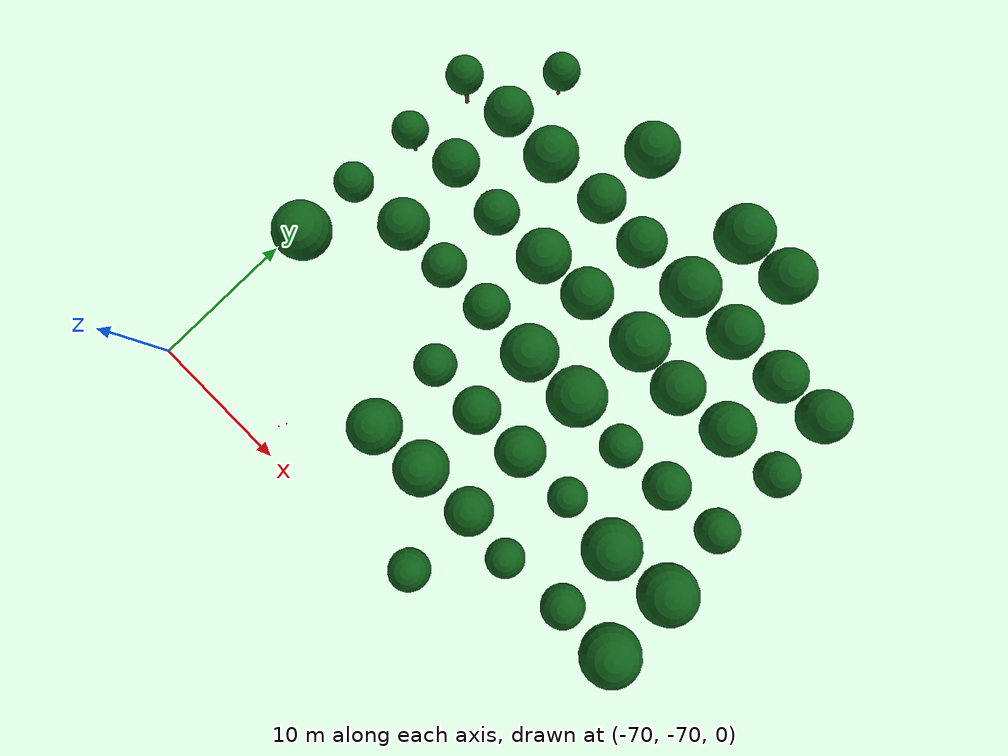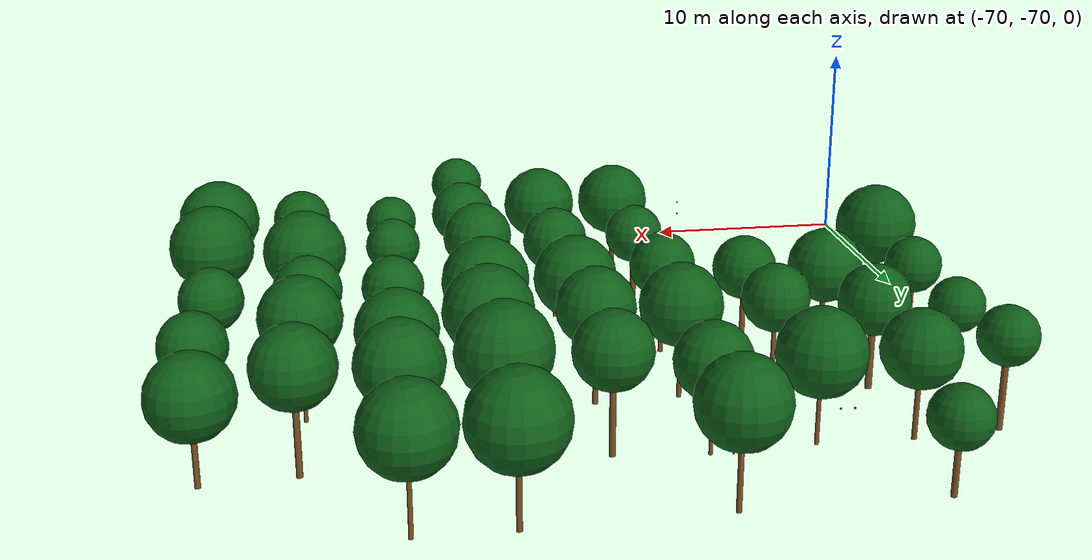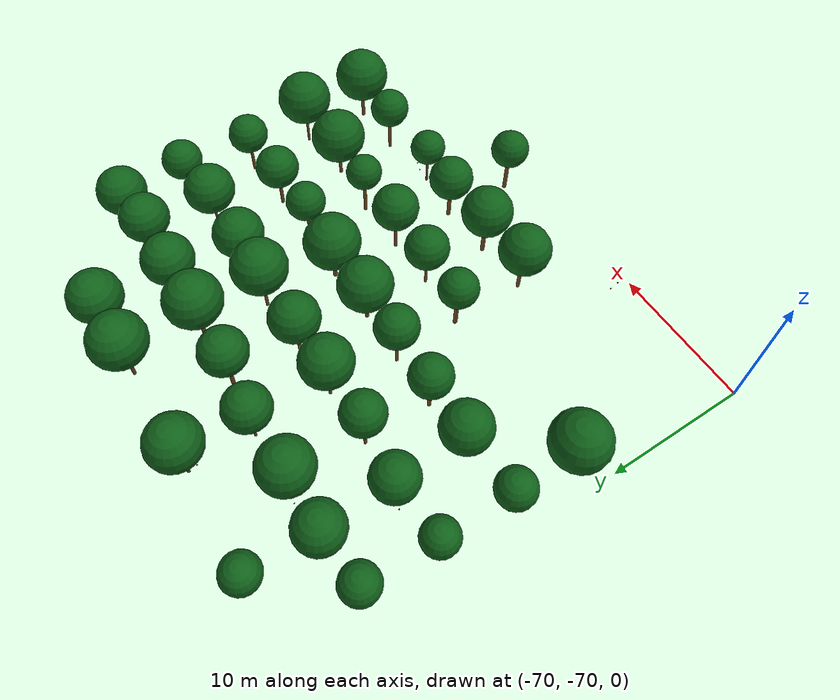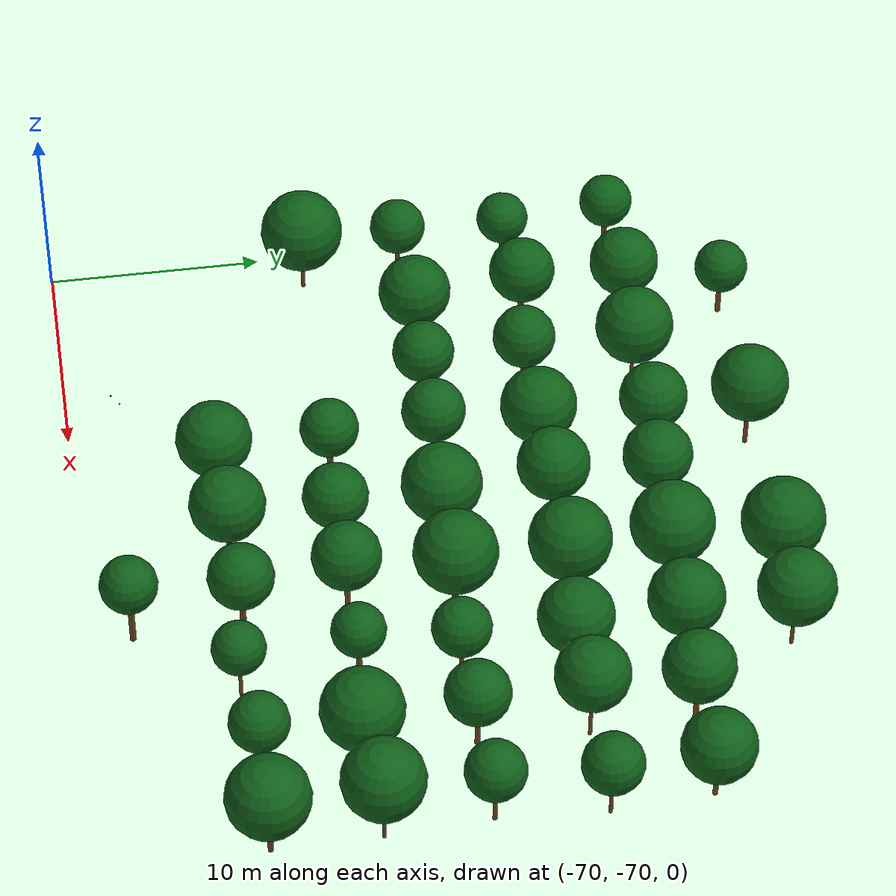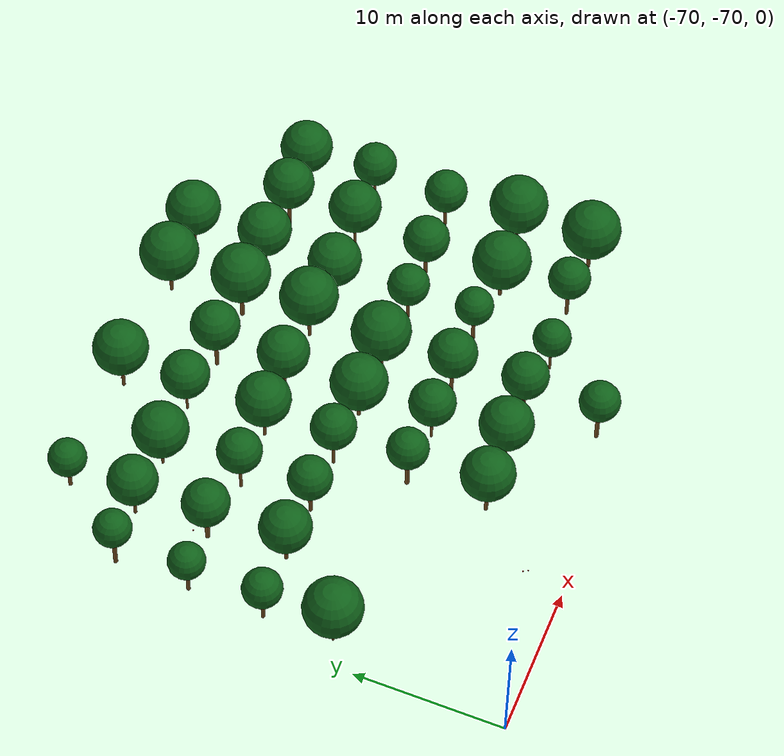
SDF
<sdf version="1.9">
 <world name="cheongsong_orchard">
  <model name="apple_tree_503">
   <static>true</static>
   <pose>-48.19 -67.98 0 0 0 0</pose>
   <link name="link">
    <collision name="trunk_col">
     <pose>0 0 1.38 0 0 0</pose>
     <geometry><cylinder><radius>0.141</radius><length>2.77</length></cylinder></geometry>
    </collision>
    <visual name="trunk_vis">
     <pose>0 0 1.38 0 0 0</pose>
     <geometry><cylinder><radius>0.141</radius><length>2.77</length></cylinder></geometry>
     <material><ambient>0.35 0.22 0.08 1</ambient><diffuse>0.45 0.30 0.12 1</diffuse></material>
    </visual>
    <collision name="canopy_col">
     <pose>0 0 4.11 0 0 0</pose>
     <geometry><sphere><radius>1.34</radius></sphere></geometry>
    </collision>
    <visual name="canopy_vis">
     <pose>0 0 4.11 0 0 0</pose>
     <geometry><sphere><radius>1.34</radius></sphere></geometry>
     <material><ambient>0.04 0.28 0.06 1</ambient><diffuse>0.06 0.38 0.10 1</diffuse></material>
    </visual>
   </link>
  </model>
  <model name="apple_tree_557">
   <static>true</static>
   <pose>-55.90 -63.38 0 0 0 0</pose>
   <link name="link">
    <collision name="trunk_col">
     <pose>0 0 1.24 0 0 0</pose>
     <geometry><cylinder><radius>0.125</radius><length>2.48</length></cylinder></geometry>
    </collision>
    <visual name="trunk_vis">
     <pose>0 0 1.24 0 0 0</pose>
     <geometry><cylinder><radius>0.125</radius><length>2.48</length></cylinder></geometry>
     <material><ambient>0.35 0.22 0.08 1</ambient><diffuse>0.45 0.30 0.12 1</diffuse></material>
    </visual>
    <collision name="canopy_col">
     <pose>0 0 4.25 0 0 0</pose>
     <geometry><sphere><radius>1.77</radius></sphere></geometry>
    </collision>
    <visual name="canopy_vis">
     <pose>0 0 4.25 0 0 0</pose>
     <geometry><sphere><radius>1.77</radius></sphere></geometry>
     <material><ambient>0.04 0.28 0.06 1</ambient><diffuse>0.06 0.38 0.10 1</diffuse></material>
    </visual>
   </link>
  </model>
  <model name="apple_tree_558">
   <static>true</static>
   <pose>-52.03 -63.15 0 0 0 0</pose>
   <link name="link">
    <collision name="trunk_col">
     <pose>0 0 1.26 0 0 0</pose>
     <geometry><cylinder><radius>0.146</radius><length>2.52</length></cylinder></geometry>
    </collision>
    <visual name="trunk_vis">
     <pose>0 0 1.26 0 0 0</pose>
     <geometry><cylinder><radius>0.146</radius><length>2.52</length></cylinder></geometry>
     <material><ambient>0.35 0.22 0.08 1</ambient><diffuse>0.45 0.30 0.12 1</diffuse></material>
    </visual>
    <collision name="canopy_col">
     <pose>0 0 4.29 0 0 0</pose>
     <geometry><sphere><radius>1.77</radius></sphere></geometry>
    </collision>
    <visual name="canopy_vis">
     <pose>0 0 4.29 0 0 0</pose>
     <geometry><sphere><radius>1.77</radius></sphere></geometry>
     <material><ambient>0.04 0.28 0.06 1</ambient><diffuse>0.06 0.38 0.10 1</diffuse></material>
    </visual>
   </link>
  </model>
  <model name="apple_tree_559">
   <static>true</static>
   <pose>-48.08 -62.95 0 0 0 0</pose>
   <link name="link">
    <collision name="trunk_col">
     <pose>0 0 1.24 0 0 0</pose>
     <geometry><cylinder><radius>0.141</radius><length>2.47</length></cylinder></geometry>
    </collision>
    <visual name="trunk_vis">
     <pose>0 0 1.24 0 0 0</pose>
     <geometry><cylinder><radius>0.141</radius><length>2.47</length></cylinder></geometry>
     <material><ambient>0.35 0.22 0.08 1</ambient><diffuse>0.45 0.30 0.12 1</diffuse></material>
    </visual>
    <collision name="canopy_col">
     <pose>0 0 4.01 0 0 0</pose>
     <geometry><sphere><radius>1.54</radius></sphere></geometry>
    </collision>
    <visual name="canopy_vis">
     <pose>0 0 4.01 0 0 0</pose>
     <geometry><sphere><radius>1.54</radius></sphere></geometry>
     <material><ambient>0.04 0.28 0.06 1</ambient><diffuse>0.06 0.38 0.10 1</diffuse></material>
    </visual>
   </link>
  </model>
  <model name="apple_tree_560">
   <static>true</static>
   <pose>-44.48 -63.43 0 0 0 0</pose>
   <link name="link">
    <collision name="trunk_col">
     <pose>0 0 1.16 0 0 0</pose>
     <geometry><cylinder><radius>0.084</radius><length>2.32</length></cylinder></geometry>
    </collision>
    <visual name="trunk_vis">
     <pose>0 0 1.16 0 0 0</pose>
     <geometry><cylinder><radius>0.084</radius><length>2.32</length></cylinder></geometry>
     <material><ambient>0.35 0.22 0.08 1</ambient><diffuse>0.45 0.30 0.12 1</diffuse></material>
    </visual>
    <collision name="canopy_col">
     <pose>0 0 3.57 0 0 0</pose>
     <geometry><sphere><radius>1.25</radius></sphere></geometry>
    </collision>
    <visual name="canopy_vis">
     <pose>0 0 3.57 0 0 0</pose>
     <geometry><sphere><radius>1.25</radius></sphere></geometry>
     <material><ambient>0.04 0.28 0.06 1</ambient><diffuse>0.06 0.38 0.10 1</diffuse></material>
    </visual>
   </link>
  </model>
  <model name="apple_tree_561">
   <static>true</static>
   <pose>-40.05 -62.97 0 0 0 0</pose>
   <link name="link">
    <collision name="trunk_col">
     <pose>0 0 1.34 0 0 0</pose>
     <geometry><cylinder><radius>0.119</radius><length>2.67</length></cylinder></geometry>
    </collision>
    <visual name="trunk_vis">
     <pose>0 0 1.34 0 0 0</pose>
     <geometry><cylinder><radius>0.119</radius><length>2.67</length></cylinder></geometry>
     <material><ambient>0.35 0.22 0.08 1</ambient><diffuse>0.45 0.30 0.12 1</diffuse></material>
    </visual>
    <collision name="canopy_col">
     <pose>0 0 4.06 0 0 0</pose>
     <geometry><sphere><radius>1.39</radius></sphere></geometry>
    </collision>
    <visual name="canopy_vis">
     <pose>0 0 4.06 0 0 0</pose>
     <geometry><sphere><radius>1.39</radius></sphere></geometry>
     <material><ambient>0.04 0.28 0.06 1</ambient><diffuse>0.06 0.38 0.10 1</diffuse></material>
    </visual>
   </link>
  </model>
  <model name="apple_tree_562">
   <static>true</static>
   <pose>-36.02 -63.01 0 0 0 0</pose>
   <link name="link">
    <collision name="trunk_col">
     <pose>0 0 1.12 0 0 0</pose>
     <geometry><cylinder><radius>0.127</radius><length>2.23</length></cylinder></geometry>
    </collision>
    <visual name="trunk_vis">
     <pose>0 0 1.12 0 0 0</pose>
     <geometry><cylinder><radius>0.127</radius><length>2.23</length></cylinder></geometry>
     <material><ambient>0.35 0.22 0.08 1</ambient><diffuse>0.45 0.30 0.12 1</diffuse></material>
    </visual>
    <collision name="canopy_col">
     <pose>0 0 4.17 0 0 0</pose>
     <geometry><sphere><radius>1.94</radius></sphere></geometry>
    </collision>
    <visual name="canopy_vis">
     <pose>0 0 4.17 0 0 0</pose>
     <geometry><sphere><radius>1.94</radius></sphere></geometry>
     <material><ambient>0.04 0.28 0.06 1</ambient><diffuse>0.06 0.38 0.10 1</diffuse></material>
    </visual>
   </link>
  </model>
  <model name="apple_tree_613">
   <static>true</static>
   <pose>-68.18 -57.96 0 0 0 0</pose>
   <link name="link">
    <collision name="trunk_col">
     <pose>0 0 1.05 0 0 0</pose>
     <geometry><cylinder><radius>0.092</radius><length>2.09</length></cylinder></geometry>
    </collision>
    <visual name="trunk_vis">
     <pose>0 0 1.05 0 0 0</pose>
     <geometry><cylinder><radius>0.092</radius><length>2.09</length></cylinder></geometry>
     <material><ambient>0.35 0.22 0.08 1</ambient><diffuse>0.45 0.30 0.12 1</diffuse></material>
    </visual>
    <collision name="canopy_col">
     <pose>0 0 4.03 0 0 0</pose>
     <geometry><sphere><radius>1.94</radius></sphere></geometry>
    </collision>
    <visual name="canopy_vis">
     <pose>0 0 4.03 0 0 0</pose>
     <geometry><sphere><radius>1.94</radius></sphere></geometry>
     <material><ambient>0.04 0.28 0.06 1</ambient><diffuse>0.06 0.38 0.10 1</diffuse></material>
    </visual>
   </link>
  </model>
  <model name="apple_tree_614">
   <static>true</static>
   <pose>-55.96 -58.05 0 0 0 0</pose>
   <link name="link">
    <collision name="trunk_col">
     <pose>0 0 1.38 0 0 0</pose>
     <geometry><cylinder><radius>0.146</radius><length>2.75</length></cylinder></geometry>
    </collision>
    <visual name="trunk_vis">
     <pose>0 0 1.38 0 0 0</pose>
     <geometry><cylinder><radius>0.146</radius><length>2.75</length></cylinder></geometry>
     <material><ambient>0.35 0.22 0.08 1</ambient><diffuse>0.45 0.30 0.12 1</diffuse></material>
    </visual>
    <collision name="canopy_col">
     <pose>0 0 4.12 0 0 0</pose>
     <geometry><sphere><radius>1.37</radius></sphere></geometry>
    </collision>
    <visual name="canopy_vis">
     <pose>0 0 4.12 0 0 0</pose>
     <geometry><sphere><radius>1.37</radius></sphere></geometry>
     <material><ambient>0.04 0.28 0.06 1</ambient><diffuse>0.06 0.38 0.10 1</diffuse></material>
    </visual>
   </link>
  </model>
  <model name="apple_tree_615">
   <static>true</static>
   <pose>-52.13 -58.21 0 0 0 0</pose>
   <link name="link">
    <collision name="trunk_col">
     <pose>0 0 1.21 0 0 0</pose>
     <geometry><cylinder><radius>0.095</radius><length>2.42</length></cylinder></geometry>
    </collision>
    <visual name="trunk_vis">
     <pose>0 0 1.21 0 0 0</pose>
     <geometry><cylinder><radius>0.095</radius><length>2.42</length></cylinder></geometry>
     <material><ambient>0.35 0.22 0.08 1</ambient><diffuse>0.45 0.30 0.12 1</diffuse></material>
    </visual>
    <collision name="canopy_col">
     <pose>0 0 3.95 0 0 0</pose>
     <geometry><sphere><radius>1.53</radius></sphere></geometry>
    </collision>
    <visual name="canopy_vis">
     <pose>0 0 3.95 0 0 0</pose>
     <geometry><sphere><radius>1.53</radius></sphere></geometry>
     <material><ambient>0.04 0.28 0.06 1</ambient><diffuse>0.06 0.38 0.10 1</diffuse></material>
    </visual>
   </link>
  </model>
  <model name="apple_tree_616">
   <static>true</static>
   <pose>-48.40 -58.14 0 0 0 0</pose>
   <link name="link">
    <collision name="trunk_col">
     <pose>0 0 1.35 0 0 0</pose>
     <geometry><cylinder><radius>0.124</radius><length>2.70</length></cylinder></geometry>
    </collision>
    <visual name="trunk_vis">
     <pose>0 0 1.35 0 0 0</pose>
     <geometry><cylinder><radius>0.124</radius><length>2.70</length></cylinder></geometry>
     <material><ambient>0.35 0.22 0.08 1</ambient><diffuse>0.45 0.30 0.12 1</diffuse></material>
    </visual>
    <collision name="canopy_col">
     <pose>0 0 4.31 0 0 0</pose>
     <geometry><sphere><radius>1.61</radius></sphere></geometry>
    </collision>
    <visual name="canopy_vis">
     <pose>0 0 4.31 0 0 0</pose>
     <geometry><sphere><radius>1.61</radius></sphere></geometry>
     <material><ambient>0.04 0.28 0.06 1</ambient><diffuse>0.06 0.38 0.10 1</diffuse></material>
    </visual>
   </link>
  </model>
  <model name="apple_tree_617">
   <static>true</static>
   <pose>-44.39 -58.08 0 0 0 0</pose>
   <link name="link">
    <collision name="trunk_col">
     <pose>0 0 1.42 0 0 0</pose>
     <geometry><cylinder><radius>0.122</radius><length>2.85</length></cylinder></geometry>
    </collision>
    <visual name="trunk_vis">
     <pose>0 0 1.42 0 0 0</pose>
     <geometry><cylinder><radius>0.122</radius><length>2.85</length></cylinder></geometry>
     <material><ambient>0.35 0.22 0.08 1</ambient><diffuse>0.45 0.30 0.12 1</diffuse></material>
    </visual>
    <collision name="canopy_col">
     <pose>0 0 4.10 0 0 0</pose>
     <geometry><sphere><radius>1.26</radius></sphere></geometry>
    </collision>
    <visual name="canopy_vis">
     <pose>0 0 4.10 0 0 0</pose>
     <geometry><sphere><radius>1.26</radius></sphere></geometry>
     <material><ambient>0.04 0.28 0.06 1</ambient><diffuse>0.06 0.38 0.10 1</diffuse></material>
    </visual>
   </link>
  </model>
  <model name="apple_tree_618">
   <static>true</static>
   <pose>-40.26 -58.41 0 0 0 0</pose>
   <link name="link">
    <collision name="trunk_col">
     <pose>0 0 0.98 0 0 0</pose>
     <geometry><cylinder><radius>0.117</radius><length>1.97</length></cylinder></geometry>
    </collision>
    <visual name="trunk_vis">
     <pose>0 0 0.98 0 0 0</pose>
     <geometry><cylinder><radius>0.117</radius><length>1.97</length></cylinder></geometry>
     <material><ambient>0.35 0.22 0.08 1</ambient><diffuse>0.45 0.30 0.12 1</diffuse></material>
    </visual>
    <collision name="canopy_col">
     <pose>0 0 3.89 0 0 0</pose>
     <geometry><sphere><radius>1.93</radius></sphere></geometry>
    </collision>
    <visual name="canopy_vis">
     <pose>0 0 3.89 0 0 0</pose>
     <geometry><sphere><radius>1.93</radius></sphere></geometry>
     <material><ambient>0.04 0.28 0.06 1</ambient><diffuse>0.06 0.38 0.10 1</diffuse></material>
    </visual>
   </link>
  </model>
  <model name="apple_tree_619">
   <static>true</static>
   <pose>-36.08 -57.99 0 0 0 0</pose>
   <link name="link">
    <collision name="trunk_col">
     <pose>0 0 1.27 0 0 0</pose>
     <geometry><cylinder><radius>0.092</radius><length>2.54</length></cylinder></geometry>
    </collision>
    <visual name="trunk_vis">
     <pose>0 0 1.27 0 0 0</pose>
     <geometry><cylinder><radius>0.092</radius><length>2.54</length></cylinder></geometry>
     <material><ambient>0.35 0.22 0.08 1</ambient><diffuse>0.45 0.30 0.12 1</diffuse></material>
    </visual>
    <collision name="canopy_col">
     <pose>0 0 4.46 0 0 0</pose>
     <geometry><sphere><radius>1.92</radius></sphere></geometry>
    </collision>
    <visual name="canopy_vis">
     <pose>0 0 4.46 0 0 0</pose>
     <geometry><sphere><radius>1.92</radius></sphere></geometry>
     <material><ambient>0.04 0.28 0.06 1</ambient><diffuse>0.06 0.38 0.10 1</diffuse></material>
    </visual>
   </link>
  </model>
  <model name="apple_tree_670">
   <static>true</static>
   <pose>-68.30 -53.34 0 0 0 0</pose>
   <link name="link">
    <collision name="trunk_col">
     <pose>0 0 1.11 0 0 0</pose>
     <geometry><cylinder><radius>0.124</radius><length>2.23</length></cylinder></geometry>
    </collision>
    <visual name="trunk_vis">
     <pose>0 0 1.11 0 0 0</pose>
     <geometry><cylinder><radius>0.124</radius><length>2.23</length></cylinder></geometry>
     <material><ambient>0.35 0.22 0.08 1</ambient><diffuse>0.45 0.30 0.12 1</diffuse></material>
    </visual>
    <collision name="canopy_col">
     <pose>0 0 3.53 0 0 0</pose>
     <geometry><sphere><radius>1.31</radius></sphere></geometry>
    </collision>
    <visual name="canopy_vis">
     <pose>0 0 3.53 0 0 0</pose>
     <geometry><sphere><radius>1.31</radius></sphere></geometry>
     <material><ambient>0.04 0.28 0.06 1</ambient><diffuse>0.06 0.38 0.10 1</diffuse></material>
    </visual>
   </link>
  </model>
  <model name="apple_tree_671">
   <static>true</static>
   <pose>-63.91 -53.07 0 0 0 0</pose>
   <link name="link">
    <collision name="trunk_col">
     <pose>0 0 1.06 0 0 0</pose>
     <geometry><cylinder><radius>0.122</radius><length>2.12</length></cylinder></geometry>
    </collision>
    <visual name="trunk_vis">
     <pose>0 0 1.06 0 0 0</pose>
     <geometry><cylinder><radius>0.122</radius><length>2.12</length></cylinder></geometry>
     <material><ambient>0.35 0.22 0.08 1</ambient><diffuse>0.45 0.30 0.12 1</diffuse></material>
    </visual>
    <collision name="canopy_col">
     <pose>0 0 3.83 0 0 0</pose>
     <geometry><sphere><radius>1.70</radius></sphere></geometry>
    </collision>
    <visual name="canopy_vis">
     <pose>0 0 3.83 0 0 0</pose>
     <geometry><sphere><radius>1.70</radius></sphere></geometry>
     <material><ambient>0.04 0.28 0.06 1</ambient><diffuse>0.06 0.38 0.10 1</diffuse></material>
    </visual>
   </link>
  </model>
  <model name="apple_tree_672">
   <static>true</static>
   <pose>-60.11 -53.15 0 0 0 0</pose>
   <link name="link">
    <collision name="trunk_col">
     <pose>0 0 1.23 0 0 0</pose>
     <geometry><cylinder><radius>0.125</radius><length>2.46</length></cylinder></geometry>
    </collision>
    <visual name="trunk_vis">
     <pose>0 0 1.23 0 0 0</pose>
     <geometry><cylinder><radius>0.125</radius><length>2.46</length></cylinder></geometry>
     <material><ambient>0.35 0.22 0.08 1</ambient><diffuse>0.45 0.30 0.12 1</diffuse></material>
    </visual>
    <collision name="canopy_col">
     <pose>0 0 3.91 0 0 0</pose>
     <geometry><sphere><radius>1.45</radius></sphere></geometry>
    </collision>
    <visual name="canopy_vis">
     <pose>0 0 3.91 0 0 0</pose>
     <geometry><sphere><radius>1.45</radius></sphere></geometry>
     <material><ambient>0.04 0.28 0.06 1</ambient><diffuse>0.06 0.38 0.10 1</diffuse></material>
    </visual>
   </link>
  </model>
  <model name="apple_tree_673">
   <static>true</static>
   <pose>-56.28 -53.17 0 0 0 0</pose>
   <link name="link">
    <collision name="trunk_col">
     <pose>0 0 1.37 0 0 0</pose>
     <geometry><cylinder><radius>0.111</radius><length>2.73</length></cylinder></geometry>
    </collision>
    <visual name="trunk_vis">
     <pose>0 0 1.37 0 0 0</pose>
     <geometry><cylinder><radius>0.111</radius><length>2.73</length></cylinder></geometry>
     <material><ambient>0.35 0.22 0.08 1</ambient><diffuse>0.45 0.30 0.12 1</diffuse></material>
    </visual>
    <collision name="canopy_col">
     <pose>0 0 4.23 0 0 0</pose>
     <geometry><sphere><radius>1.49</radius></sphere></geometry>
    </collision>
    <visual name="canopy_vis">
     <pose>0 0 4.23 0 0 0</pose>
     <geometry><sphere><radius>1.49</radius></sphere></geometry>
     <material><ambient>0.04 0.28 0.06 1</ambient><diffuse>0.06 0.38 0.10 1</diffuse></material>
    </visual>
   </link>
  </model>
  <model name="apple_tree_674">
   <static>true</static>
   <pose>-52.33 -53.31 0 0 0 0</pose>
   <link name="link">
    <collision name="trunk_col">
     <pose>0 0 0.98 0 0 0</pose>
     <geometry><cylinder><radius>0.137</radius><length>1.95</length></cylinder></geometry>
    </collision>
    <visual name="trunk_vis">
     <pose>0 0 0.98 0 0 0</pose>
     <geometry><cylinder><radius>0.137</radius><length>1.95</length></cylinder></geometry>
     <material><ambient>0.35 0.22 0.08 1</ambient><diffuse>0.45 0.30 0.12 1</diffuse></material>
    </visual>
    <collision name="canopy_col">
     <pose>0 0 3.83 0 0 0</pose>
     <geometry><sphere><radius>1.88</radius></sphere></geometry>
    </collision>
    <visual name="canopy_vis">
     <pose>0 0 3.83 0 0 0</pose>
     <geometry><sphere><radius>1.88</radius></sphere></geometry>
     <material><ambient>0.04 0.28 0.06 1</ambient><diffuse>0.06 0.38 0.10 1</diffuse></material>
    </visual>
   </link>
  </model>
  <model name="apple_tree_675">
   <static>true</static>
   <pose>-48.28 -53.21 0 0 0 0</pose>
   <link name="link">
    <collision name="trunk_col">
     <pose>0 0 0.98 0 0 0</pose>
     <geometry><cylinder><radius>0.145</radius><length>1.96</length></cylinder></geometry>
    </collision>
    <visual name="trunk_vis">
     <pose>0 0 0.98 0 0 0</pose>
     <geometry><cylinder><radius>0.145</radius><length>1.96</length></cylinder></geometry>
     <material><ambient>0.35 0.22 0.08 1</ambient><diffuse>0.45 0.30 0.12 1</diffuse></material>
    </visual>
    <collision name="canopy_col">
     <pose>0 0 3.92 0 0 0</pose>
     <geometry><sphere><radius>1.96</radius></sphere></geometry>
    </collision>
    <visual name="canopy_vis">
     <pose>0 0 3.92 0 0 0</pose>
     <geometry><sphere><radius>1.96</radius></sphere></geometry>
     <material><ambient>0.04 0.28 0.06 1</ambient><diffuse>0.06 0.38 0.10 1</diffuse></material>
    </visual>
   </link>
  </model>
  <model name="apple_tree_676">
   <static>true</static>
   <pose>-44.20 -53.48 0 0 0 0</pose>
   <link name="link">
    <collision name="trunk_col">
     <pose>0 0 1.18 0 0 0</pose>
     <geometry><cylinder><radius>0.101</radius><length>2.37</length></cylinder></geometry>
    </collision>
    <visual name="trunk_vis">
     <pose>0 0 1.18 0 0 0</pose>
     <geometry><cylinder><radius>0.101</radius><length>2.37</length></cylinder></geometry>
     <material><ambient>0.35 0.22 0.08 1</ambient><diffuse>0.45 0.30 0.12 1</diffuse></material>
    </visual>
    <collision name="canopy_col">
     <pose>0 0 3.75 0 0 0</pose>
     <geometry><sphere><radius>1.38</radius></sphere></geometry>
    </collision>
    <visual name="canopy_vis">
     <pose>0 0 3.75 0 0 0</pose>
     <geometry><sphere><radius>1.38</radius></sphere></geometry>
     <material><ambient>0.04 0.28 0.06 1</ambient><diffuse>0.06 0.38 0.10 1</diffuse></material>
    </visual>
   </link>
  </model>
  <model name="apple_tree_677">
   <static>true</static>
   <pose>-40.49 -53.27 0 0 0 0</pose>
   <link name="link">
    <collision name="trunk_col">
     <pose>0 0 1.18 0 0 0</pose>
     <geometry><cylinder><radius>0.119</radius><length>2.35</length></cylinder></geometry>
    </collision>
    <visual name="trunk_vis">
     <pose>0 0 1.18 0 0 0</pose>
     <geometry><cylinder><radius>0.119</radius><length>2.35</length></cylinder></geometry>
     <material><ambient>0.35 0.22 0.08 1</ambient><diffuse>0.45 0.30 0.12 1</diffuse></material>
    </visual>
    <collision name="canopy_col">
     <pose>0 0 3.87 0 0 0</pose>
     <geometry><sphere><radius>1.52</radius></sphere></geometry>
    </collision>
    <visual name="canopy_vis">
     <pose>0 0 3.87 0 0 0</pose>
     <geometry><sphere><radius>1.52</radius></sphere></geometry>
     <material><ambient>0.04 0.28 0.06 1</ambient><diffuse>0.06 0.38 0.10 1</diffuse></material>
    </visual>
   </link>
  </model>
  <model name="apple_tree_678">
   <static>true</static>
   <pose>-36.39 -53.05 0 0 0 0</pose>
   <link name="link">
    <collision name="trunk_col">
     <pose>0 0 1.16 0 0 0</pose>
     <geometry><cylinder><radius>0.106</radius><length>2.33</length></cylinder></geometry>
    </collision>
    <visual name="trunk_vis">
     <pose>0 0 1.16 0 0 0</pose>
     <geometry><cylinder><radius>0.106</radius><length>2.33</length></cylinder></geometry>
     <material><ambient>0.35 0.22 0.08 1</ambient><diffuse>0.45 0.30 0.12 1</diffuse></material>
    </visual>
    <collision name="canopy_col">
     <pose>0 0 3.74 0 0 0</pose>
     <geometry><sphere><radius>1.41</radius></sphere></geometry>
    </collision>
    <visual name="canopy_vis">
     <pose>0 0 3.74 0 0 0</pose>
     <geometry><sphere><radius>1.41</radius></sphere></geometry>
     <material><ambient>0.04 0.28 0.06 1</ambient><diffuse>0.06 0.38 0.10 1</diffuse></material>
    </visual>
   </link>
  </model>
  <model name="apple_tree_729">
   <static>true</static>
   <pose>-68.24 -48.28 0 0 0 0</pose>
   <link name="link">
    <collision name="trunk_col">
     <pose>0 0 1.13 0 0 0</pose>
     <geometry><cylinder><radius>0.122</radius><length>2.26</length></cylinder></geometry>
    </collision>
    <visual name="trunk_vis">
     <pose>0 0 1.13 0 0 0</pose>
     <geometry><cylinder><radius>0.122</radius><length>2.26</length></cylinder></geometry>
     <material><ambient>0.35 0.22 0.08 1</ambient><diffuse>0.45 0.30 0.12 1</diffuse></material>
    </visual>
    <collision name="canopy_col">
     <pose>0 0 3.48 0 0 0</pose>
     <geometry><sphere><radius>1.22</radius></sphere></geometry>
    </collision>
    <visual name="canopy_vis">
     <pose>0 0 3.48 0 0 0</pose>
     <geometry><sphere><radius>1.22</radius></sphere></geometry>
     <material><ambient>0.04 0.28 0.06 1</ambient><diffuse>0.06 0.38 0.10 1</diffuse></material>
    </visual>
   </link>
  </model>
  <model name="apple_tree_730">
   <static>true</static>
   <pose>-64.31 -47.90 0 0 0 0</pose>
   <link name="link">
    <collision name="trunk_col">
     <pose>0 0 1.28 0 0 0</pose>
     <geometry><cylinder><radius>0.149</radius><length>2.55</length></cylinder></geometry>
    </collision>
    <visual name="trunk_vis">
     <pose>0 0 1.28 0 0 0</pose>
     <geometry><cylinder><radius>0.149</radius><length>2.55</length></cylinder></geometry>
     <material><ambient>0.35 0.22 0.08 1</ambient><diffuse>0.45 0.30 0.12 1</diffuse></material>
    </visual>
    <collision name="canopy_col">
     <pose>0 0 4.10 0 0 0</pose>
     <geometry><sphere><radius>1.55</radius></sphere></geometry>
    </collision>
    <visual name="canopy_vis">
     <pose>0 0 4.10 0 0 0</pose>
     <geometry><sphere><radius>1.55</radius></sphere></geometry>
     <material><ambient>0.04 0.28 0.06 1</ambient><diffuse>0.06 0.38 0.10 1</diffuse></material>
    </visual>
   </link>
  </model>
  <model name="apple_tree_731">
   <static>true</static>
   <pose>-60.12 -48.40 0 0 0 0</pose>
   <link name="link">
    <collision name="trunk_col">
     <pose>0 0 1.38 0 0 0</pose>
     <geometry><cylinder><radius>0.100</radius><length>2.76</length></cylinder></geometry>
    </collision>
    <visual name="trunk_vis">
     <pose>0 0 1.38 0 0 0</pose>
     <geometry><cylinder><radius>0.100</radius><length>2.76</length></cylinder></geometry>
     <material><ambient>0.35 0.22 0.08 1</ambient><diffuse>0.45 0.30 0.12 1</diffuse></material>
    </visual>
    <collision name="canopy_col">
     <pose>0 0 4.24 0 0 0</pose>
     <geometry><sphere><radius>1.47</radius></sphere></geometry>
    </collision>
    <visual name="canopy_vis">
     <pose>0 0 4.24 0 0 0</pose>
     <geometry><sphere><radius>1.47</radius></sphere></geometry>
     <material><ambient>0.04 0.28 0.06 1</ambient><diffuse>0.06 0.38 0.10 1</diffuse></material>
    </visual>
   </link>
  </model>
  <model name="apple_tree_732">
   <static>true</static>
   <pose>-56.01 -48.31 0 0 0 0</pose>
   <link name="link">
    <collision name="trunk_col">
     <pose>0 0 1.20 0 0 0</pose>
     <geometry><cylinder><radius>0.103</radius><length>2.41</length></cylinder></geometry>
    </collision>
    <visual name="trunk_vis">
     <pose>0 0 1.20 0 0 0</pose>
     <geometry><cylinder><radius>0.103</radius><length>2.41</length></cylinder></geometry>
     <material><ambient>0.35 0.22 0.08 1</ambient><diffuse>0.45 0.30 0.12 1</diffuse></material>
    </visual>
    <collision name="canopy_col">
     <pose>0 0 4.20 0 0 0</pose>
     <geometry><sphere><radius>1.79</radius></sphere></geometry>
    </collision>
    <visual name="canopy_vis">
     <pose>0 0 4.20 0 0 0</pose>
     <geometry><sphere><radius>1.79</radius></sphere></geometry>
     <material><ambient>0.04 0.28 0.06 1</ambient><diffuse>0.06 0.38 0.10 1</diffuse></material>
    </visual>
   </link>
  </model>
  <model name="apple_tree_733">
   <static>true</static>
   <pose>-52.36 -48.16 0 0 0 0</pose>
   <link name="link">
    <collision name="trunk_col">
     <pose>0 0 1.34 0 0 0</pose>
     <geometry><cylinder><radius>0.118</radius><length>2.68</length></cylinder></geometry>
    </collision>
    <visual name="trunk_vis">
     <pose>0 0 1.34 0 0 0</pose>
     <geometry><cylinder><radius>0.118</radius><length>2.68</length></cylinder></geometry>
     <material><ambient>0.35 0.22 0.08 1</ambient><diffuse>0.45 0.30 0.12 1</diffuse></material>
    </visual>
    <collision name="canopy_col">
     <pose>0 0 4.38 0 0 0</pose>
     <geometry><sphere><radius>1.70</radius></sphere></geometry>
    </collision>
    <visual name="canopy_vis">
     <pose>0 0 4.38 0 0 0</pose>
     <geometry><sphere><radius>1.70</radius></sphere></geometry>
     <material><ambient>0.04 0.28 0.06 1</ambient><diffuse>0.06 0.38 0.10 1</diffuse></material>
    </visual>
   </link>
  </model>
  <model name="apple_tree_734">
   <static>true</static>
   <pose>-47.89 -48.07 0 0 0 0</pose>
   <link name="link">
    <collision name="trunk_col">
     <pose>0 0 1.30 0 0 0</pose>
     <geometry><cylinder><radius>0.106</radius><length>2.60</length></cylinder></geometry>
    </collision>
    <visual name="trunk_vis">
     <pose>0 0 1.30 0 0 0</pose>
     <geometry><cylinder><radius>0.106</radius><length>2.60</length></cylinder></geometry>
     <material><ambient>0.35 0.22 0.08 1</ambient><diffuse>0.45 0.30 0.12 1</diffuse></material>
    </visual>
    <collision name="canopy_col">
     <pose>0 0 4.53 0 0 0</pose>
     <geometry><sphere><radius>1.92</radius></sphere></geometry>
    </collision>
    <visual name="canopy_vis">
     <pose>0 0 4.53 0 0 0</pose>
     <geometry><sphere><radius>1.92</radius></sphere></geometry>
     <material><ambient>0.04 0.28 0.06 1</ambient><diffuse>0.06 0.38 0.10 1</diffuse></material>
    </visual>
   </link>
  </model>
  <model name="apple_tree_735">
   <static>true</static>
   <pose>-44.17 -48.34 0 0 0 0</pose>
   <link name="link">
    <collision name="trunk_col">
     <pose>0 0 1.00 0 0 0</pose>
     <geometry><cylinder><radius>0.094</radius><length>2.01</length></cylinder></geometry>
    </collision>
    <visual name="trunk_vis">
     <pose>0 0 1.00 0 0 0</pose>
     <geometry><cylinder><radius>0.094</radius><length>2.01</length></cylinder></geometry>
     <material><ambient>0.35 0.22 0.08 1</ambient><diffuse>0.45 0.30 0.12 1</diffuse></material>
    </visual>
    <collision name="canopy_col">
     <pose>0 0 3.77 0 0 0</pose>
     <geometry><sphere><radius>1.76</radius></sphere></geometry>
    </collision>
    <visual name="canopy_vis">
     <pose>0 0 3.77 0 0 0</pose>
     <geometry><sphere><radius>1.76</radius></sphere></geometry>
     <material><ambient>0.04 0.28 0.06 1</ambient><diffuse>0.06 0.38 0.10 1</diffuse></material>
    </visual>
   </link>
  </model>
  <model name="apple_tree_736">
   <static>true</static>
   <pose>-40.33 -48.21 0 0 0 0</pose>
   <link name="link">
    <collision name="trunk_col">
     <pose>0 0 1.44 0 0 0</pose>
     <geometry><cylinder><radius>0.085</radius><length>2.87</length></cylinder></geometry>
    </collision>
    <visual name="trunk_vis">
     <pose>0 0 1.44 0 0 0</pose>
     <geometry><cylinder><radius>0.085</radius><length>2.87</length></cylinder></geometry>
     <material><ambient>0.35 0.22 0.08 1</ambient><diffuse>0.45 0.30 0.12 1</diffuse></material>
    </visual>
    <collision name="canopy_col">
     <pose>0 0 4.60 0 0 0</pose>
     <geometry><sphere><radius>1.73</radius></sphere></geometry>
    </collision>
    <visual name="canopy_vis">
     <pose>0 0 4.60 0 0 0</pose>
     <geometry><sphere><radius>1.73</radius></sphere></geometry>
     <material><ambient>0.04 0.28 0.06 1</ambient><diffuse>0.06 0.38 0.10 1</diffuse></material>
    </visual>
   </link>
  </model>
  <model name="apple_tree_737">
   <static>true</static>
   <pose>-36.09 -47.94 0 0 0 0</pose>
   <link name="link">
    <collision name="trunk_col">
     <pose>0 0 1.15 0 0 0</pose>
     <geometry><cylinder><radius>0.088</radius><length>2.30</length></cylinder></geometry>
    </collision>
    <visual name="trunk_vis">
     <pose>0 0 1.15 0 0 0</pose>
     <geometry><cylinder><radius>0.088</radius><length>2.30</length></cylinder></geometry>
     <material><ambient>0.35 0.22 0.08 1</ambient><diffuse>0.45 0.30 0.12 1</diffuse></material>
    </visual>
    <collision name="canopy_col">
     <pose>0 0 3.74 0 0 0</pose>
     <geometry><sphere><radius>1.43</radius></sphere></geometry>
    </collision>
    <visual name="canopy_vis">
     <pose>0 0 3.74 0 0 0</pose>
     <geometry><sphere><radius>1.43</radius></sphere></geometry>
     <material><ambient>0.04 0.28 0.06 1</ambient><diffuse>0.06 0.38 0.10 1</diffuse></material>
    </visual>
   </link>
  </model>
  <model name="apple_tree_788">
   <static>true</static>
   <pose>-68.14 -43.29 0 0 0 0</pose>
   <link name="link">
    <collision name="trunk_col">
     <pose>0 0 1.42 0 0 0</pose>
     <geometry><cylinder><radius>0.136</radius><length>2.84</length></cylinder></geometry>
    </collision>
    <visual name="trunk_vis">
     <pose>0 0 1.42 0 0 0</pose>
     <geometry><cylinder><radius>0.136</radius><length>2.84</length></cylinder></geometry>
     <material><ambient>0.35 0.22 0.08 1</ambient><diffuse>0.45 0.30 0.12 1</diffuse></material>
    </visual>
    <collision name="canopy_col">
     <pose>0 0 4.10 0 0 0</pose>
     <geometry><sphere><radius>1.25</radius></sphere></geometry>
    </collision>
    <visual name="canopy_vis">
     <pose>0 0 4.10 0 0 0</pose>
     <geometry><sphere><radius>1.25</radius></sphere></geometry>
     <material><ambient>0.04 0.28 0.06 1</ambient><diffuse>0.06 0.38 0.10 1</diffuse></material>
    </visual>
   </link>
  </model>
  <model name="apple_tree_789">
   <static>true</static>
   <pose>-64.40 -42.99 0 0 0 0</pose>
   <link name="link">
    <collision name="trunk_col">
     <pose>0 0 1.14 0 0 0</pose>
     <geometry><cylinder><radius>0.106</radius><length>2.28</length></cylinder></geometry>
    </collision>
    <visual name="trunk_vis">
     <pose>0 0 1.14 0 0 0</pose>
     <geometry><cylinder><radius>0.106</radius><length>2.28</length></cylinder></geometry>
     <material><ambient>0.35 0.22 0.08 1</ambient><diffuse>0.45 0.30 0.12 1</diffuse></material>
    </visual>
    <collision name="canopy_col">
     <pose>0 0 3.91 0 0 0</pose>
     <geometry><sphere><radius>1.63</radius></sphere></geometry>
    </collision>
    <visual name="canopy_vis">
     <pose>0 0 3.91 0 0 0</pose>
     <geometry><sphere><radius>1.63</radius></sphere></geometry>
     <material><ambient>0.04 0.28 0.06 1</ambient><diffuse>0.06 0.38 0.10 1</diffuse></material>
    </visual>
   </link>
  </model>
  <model name="apple_tree_790">
   <static>true</static>
   <pose>-60.39 -43.13 0 0 0 0</pose>
   <link name="link">
    <collision name="trunk_col">
     <pose>0 0 1.07 0 0 0</pose>
     <geometry><cylinder><radius>0.088</radius><length>2.13</length></cylinder></geometry>
    </collision>
    <visual name="trunk_vis">
     <pose>0 0 1.07 0 0 0</pose>
     <geometry><cylinder><radius>0.088</radius><length>2.13</length></cylinder></geometry>
     <material><ambient>0.35 0.22 0.08 1</ambient><diffuse>0.45 0.30 0.12 1</diffuse></material>
    </visual>
    <collision name="canopy_col">
     <pose>0 0 3.96 0 0 0</pose>
     <geometry><sphere><radius>1.83</radius></sphere></geometry>
    </collision>
    <visual name="canopy_vis">
     <pose>0 0 3.96 0 0 0</pose>
     <geometry><sphere><radius>1.83</radius></sphere></geometry>
     <material><ambient>0.04 0.28 0.06 1</ambient><diffuse>0.06 0.38 0.10 1</diffuse></material>
    </visual>
   </link>
  </model>
  <model name="apple_tree_791">
   <static>true</static>
   <pose>-56.02 -42.94 0 0 0 0</pose>
   <link name="link">
    <collision name="trunk_col">
     <pose>0 0 1.19 0 0 0</pose>
     <geometry><cylinder><radius>0.082</radius><length>2.38</length></cylinder></geometry>
    </collision>
    <visual name="trunk_vis">
     <pose>0 0 1.19 0 0 0</pose>
     <geometry><cylinder><radius>0.082</radius><length>2.38</length></cylinder></geometry>
     <material><ambient>0.35 0.22 0.08 1</ambient><diffuse>0.45 0.30 0.12 1</diffuse></material>
    </visual>
    <collision name="canopy_col">
     <pose>0 0 3.97 0 0 0</pose>
     <geometry><sphere><radius>1.59</radius></sphere></geometry>
    </collision>
    <visual name="canopy_vis">
     <pose>0 0 3.97 0 0 0</pose>
     <geometry><sphere><radius>1.59</radius></sphere></geometry>
     <material><ambient>0.04 0.28 0.06 1</ambient><diffuse>0.06 0.38 0.10 1</diffuse></material>
    </visual>
   </link>
  </model>
  <model name="apple_tree_792">
   <static>true</static>
   <pose>-52.19 -43.38 0 0 0 0</pose>
   <link name="link">
    <collision name="trunk_col">
     <pose>0 0 1.43 0 0 0</pose>
     <geometry><cylinder><radius>0.131</radius><length>2.85</length></cylinder></geometry>
    </collision>
    <visual name="trunk_vis">
     <pose>0 0 1.43 0 0 0</pose>
     <geometry><cylinder><radius>0.131</radius><length>2.85</length></cylinder></geometry>
     <material><ambient>0.35 0.22 0.08 1</ambient><diffuse>0.45 0.30 0.12 1</diffuse></material>
    </visual>
    <collision name="canopy_col">
     <pose>0 0 4.47 0 0 0</pose>
     <geometry><sphere><radius>1.62</radius></sphere></geometry>
    </collision>
    <visual name="canopy_vis">
     <pose>0 0 4.47 0 0 0</pose>
     <geometry><sphere><radius>1.62</radius></sphere></geometry>
     <material><ambient>0.04 0.28 0.06 1</ambient><diffuse>0.06 0.38 0.10 1</diffuse></material>
    </visual>
   </link>
  </model>
  <model name="apple_tree_793">
   <static>true</static>
   <pose>-48.02 -43.40 0 0 0 0</pose>
   <link name="link">
    <collision name="trunk_col">
     <pose>0 0 1.40 0 0 0</pose>
     <geometry><cylinder><radius>0.138</radius><length>2.80</length></cylinder></geometry>
    </collision>
    <visual name="trunk_vis">
     <pose>0 0 1.40 0 0 0</pose>
     <geometry><cylinder><radius>0.138</radius><length>2.80</length></cylinder></geometry>
     <material><ambient>0.35 0.22 0.08 1</ambient><diffuse>0.45 0.30 0.12 1</diffuse></material>
    </visual>
    <collision name="canopy_col">
     <pose>0 0 4.75 0 0 0</pose>
     <geometry><sphere><radius>1.95</radius></sphere></geometry>
    </collision>
    <visual name="canopy_vis">
     <pose>0 0 4.75 0 0 0</pose>
     <geometry><sphere><radius>1.95</radius></sphere></geometry>
     <material><ambient>0.04 0.28 0.06 1</ambient><diffuse>0.06 0.38 0.10 1</diffuse></material>
    </visual>
   </link>
  </model>
  <model name="apple_tree_794">
   <static>true</static>
   <pose>-44.08 -43.41 0 0 0 0</pose>
   <link name="link">
    <collision name="trunk_col">
     <pose>0 0 1.33 0 0 0</pose>
     <geometry><cylinder><radius>0.112</radius><length>2.66</length></cylinder></geometry>
    </collision>
    <visual name="trunk_vis">
     <pose>0 0 1.33 0 0 0</pose>
     <geometry><cylinder><radius>0.112</radius><length>2.66</length></cylinder></geometry>
     <material><ambient>0.35 0.22 0.08 1</ambient><diffuse>0.45 0.30 0.12 1</diffuse></material>
    </visual>
    <collision name="canopy_col">
     <pose>0 0 4.43 0 0 0</pose>
     <geometry><sphere><radius>1.77</radius></sphere></geometry>
    </collision>
    <visual name="canopy_vis">
     <pose>0 0 4.43 0 0 0</pose>
     <geometry><sphere><radius>1.77</radius></sphere></geometry>
     <material><ambient>0.04 0.28 0.06 1</ambient><diffuse>0.06 0.38 0.10 1</diffuse></material>
    </visual>
   </link>
  </model>
  <model name="apple_tree_795">
   <static>true</static>
   <pose>-40.18 -43.49 0 0 0 0</pose>
   <link name="link">
    <collision name="trunk_col">
     <pose>0 0 1.43 0 0 0</pose>
     <geometry><cylinder><radius>0.128</radius><length>2.86</length></cylinder></geometry>
    </collision>
    <visual name="trunk_vis">
     <pose>0 0 1.43 0 0 0</pose>
     <geometry><cylinder><radius>0.128</radius><length>2.86</length></cylinder></geometry>
     <material><ambient>0.35 0.22 0.08 1</ambient><diffuse>0.45 0.30 0.12 1</diffuse></material>
    </visual>
    <collision name="canopy_col">
     <pose>0 0 4.53 0 0 0</pose>
     <geometry><sphere><radius>1.68</radius></sphere></geometry>
    </collision>
    <visual name="canopy_vis">
     <pose>0 0 4.53 0 0 0</pose>
     <geometry><sphere><radius>1.68</radius></sphere></geometry>
     <material><ambient>0.04 0.28 0.06 1</ambient><diffuse>0.06 0.38 0.10 1</diffuse></material>
    </visual>
   </link>
  </model>
  <model name="apple_tree_796">
   <static>true</static>
   <pose>-36.44 -43.21 0 0 0 0</pose>
   <link name="link">
    <collision name="trunk_col">
     <pose>0 0 1.00 0 0 0</pose>
     <geometry><cylinder><radius>0.116</radius><length>1.99</length></cylinder></geometry>
    </collision>
    <visual name="trunk_vis">
     <pose>0 0 1.00 0 0 0</pose>
     <geometry><cylinder><radius>0.116</radius><length>1.99</length></cylinder></geometry>
     <material><ambient>0.35 0.22 0.08 1</ambient><diffuse>0.45 0.30 0.12 1</diffuse></material>
    </visual>
    <collision name="canopy_col">
     <pose>0 0 3.72 0 0 0</pose>
     <geometry><sphere><radius>1.73</radius></sphere></geometry>
    </collision>
    <visual name="canopy_vis">
     <pose>0 0 3.72 0 0 0</pose>
     <geometry><sphere><radius>1.73</radius></sphere></geometry>
     <material><ambient>0.04 0.28 0.06 1</ambient><diffuse>0.06 0.38 0.10 1</diffuse></material>
    </visual>
   </link>
  </model>
  <model name="apple_tree_848">
   <static>true</static>
   <pose>-64.05 -38.34 0 0 0 0</pose>
   <link name="link">
    <collision name="trunk_col">
     <pose>0 0 0.99 0 0 0</pose>
     <geometry><cylinder><radius>0.123</radius><length>1.98</length></cylinder></geometry>
    </collision>
    <visual name="trunk_vis">
     <pose>0 0 0.99 0 0 0</pose>
     <geometry><cylinder><radius>0.123</radius><length>1.98</length></cylinder></geometry>
     <material><ambient>0.35 0.22 0.08 1</ambient><diffuse>0.45 0.30 0.12 1</diffuse></material>
    </visual>
    <collision name="canopy_col">
     <pose>0 0 3.23 0 0 0</pose>
     <geometry><sphere><radius>1.25</radius></sphere></geometry>
    </collision>
    <visual name="canopy_vis">
     <pose>0 0 3.23 0 0 0</pose>
     <geometry><sphere><radius>1.25</radius></sphere></geometry>
     <material><ambient>0.04 0.28 0.06 1</ambient><diffuse>0.06 0.38 0.10 1</diffuse></material>
    </visual>
   </link>
  </model>
  <model name="apple_tree_850">
   <static>true</static>
   <pose>-55.91 -38.44 0 0 0 0</pose>
   <link name="link">
    <collision name="trunk_col">
     <pose>0 0 1.27 0 0 0</pose>
     <geometry><cylinder><radius>0.106</radius><length>2.54</length></cylinder></geometry>
    </collision>
    <visual name="trunk_vis">
     <pose>0 0 1.27 0 0 0</pose>
     <geometry><cylinder><radius>0.106</radius><length>2.54</length></cylinder></geometry>
     <material><ambient>0.35 0.22 0.08 1</ambient><diffuse>0.45 0.30 0.12 1</diffuse></material>
    </visual>
    <collision name="canopy_col">
     <pose>0 0 4.35 0 0 0</pose>
     <geometry><sphere><radius>1.81</radius></sphere></geometry>
    </collision>
    <visual name="canopy_vis">
     <pose>0 0 4.35 0 0 0</pose>
     <geometry><sphere><radius>1.81</radius></sphere></geometry>
     <material><ambient>0.04 0.28 0.06 1</ambient><diffuse>0.06 0.38 0.10 1</diffuse></material>
    </visual>
   </link>
  </model>
  <model name="apple_tree_852">
   <static>true</static>
   <pose>-47.92 -38.33 0 0 0 0</pose>
   <link name="link">
    <collision name="trunk_col">
     <pose>0 0 1.19 0 0 0</pose>
     <geometry><cylinder><radius>0.114</radius><length>2.38</length></cylinder></geometry>
    </collision>
    <visual name="trunk_vis">
     <pose>0 0 1.19 0 0 0</pose>
     <geometry><cylinder><radius>0.114</radius><length>2.38</length></cylinder></geometry>
     <material><ambient>0.35 0.22 0.08 1</ambient><diffuse>0.45 0.30 0.12 1</diffuse></material>
    </visual>
    <collision name="canopy_col">
     <pose>0 0 4.32 0 0 0</pose>
     <geometry><sphere><radius>1.94</radius></sphere></geometry>
    </collision>
    <visual name="canopy_vis">
     <pose>0 0 4.32 0 0 0</pose>
     <geometry><sphere><radius>1.94</radius></sphere></geometry>
     <material><ambient>0.04 0.28 0.06 1</ambient><diffuse>0.06 0.38 0.10 1</diffuse></material>
    </visual>
   </link>
  </model>
  <model name="apple_tree_853">
   <static>true</static>
   <pose>-44.12 -38.38 0 0 0 0</pose>
   <link name="link">
    <collision name="trunk_col">
     <pose>0 0 1.21 0 0 0</pose>
     <geometry><cylinder><radius>0.090</radius><length>2.43</length></cylinder></geometry>
    </collision>
    <visual name="trunk_vis">
     <pose>0 0 1.21 0 0 0</pose>
     <geometry><cylinder><radius>0.090</radius><length>2.43</length></cylinder></geometry>
     <material><ambient>0.35 0.22 0.08 1</ambient><diffuse>0.45 0.30 0.12 1</diffuse></material>
    </visual>
    <collision name="canopy_col">
     <pose>0 0 4.24 0 0 0</pose>
     <geometry><sphere><radius>1.81</radius></sphere></geometry>
    </collision>
    <visual name="canopy_vis">
     <pose>0 0 4.24 0 0 0</pose>
     <geometry><sphere><radius>1.81</radius></sphere></geometry>
     <material><ambient>0.04 0.28 0.06 1</ambient><diffuse>0.06 0.38 0.10 1</diffuse></material>
    </visual>
   </link>
  </model>
  <model name="apple_500_0">
   <static>true</static>
   <pose>-60.47 -67.83 2.49 0 0 0</pose>
   <link name="link">
    <visual name="visual">
     <geometry><sphere><radius>0.04</radius></sphere></geometry>
     <material><ambient>0.7 0.05 0.02 1</ambient><diffuse>0.9 0.10 0.05 1</diffuse></material>
    </visual>
   </link>
  </model>
  <model name="apple_500_4">
   <static>true</static>
   <pose>-60.37 -67.46 1.97 0 0 0</pose>
   <link name="link">
    <visual name="visual">
     <geometry><sphere><radius>0.04</radius></sphere></geometry>
     <material><ambient>0.7 0.05 0.02 1</ambient><diffuse>0.9 0.10 0.05 1</diffuse></material>
    </visual>
   </link>
  </model>
  <model name="apple_560_0">
   <static>true</static>
   <pose>-44.48 -63.84 2.07 0 0 0</pose>
   <link name="link">
    <visual name="visual">
     <geometry><sphere><radius>0.04</radius></sphere></geometry>
     <material><ambient>0.7 0.05 0.02 1</ambient><diffuse>0.9 0.10 0.05 1</diffuse></material>
    </visual>
   </link>
  </model>
  <model name="apple_560_1">
   <static>true</static>
   <pose>-44.48 -62.54 2.43 0 0 0</pose>
   <link name="link">
    <visual name="visual">
     <geometry><sphere><radius>0.04</radius></sphere></geometry>
     <material><ambient>0.7 0.05 0.02 1</ambient><diffuse>0.9 0.10 0.05 1</diffuse></material>
    </visual>
   </link>
  </model>
  <model name="apple_560_2">
   <static>true</static>
   <pose>-44.71 -62.63 1.85 0 0 0</pose>
   <link name="link">
    <visual name="visual">
     <geometry><sphere><radius>0.04</radius></sphere></geometry>
     <material><ambient>0.7 0.05 0.02 1</ambient><diffuse>0.9 0.10 0.05 1</diffuse></material>
    </visual>
   </link>
  </model>
  <model name="apple_560_3">
   <static>true</static>
   <pose>-44.34 -63.77 2.58 0 0 0</pose>
   <link name="link">
    <visual name="visual">
     <geometry><sphere><radius>0.04</radius></sphere></geometry>
     <material><ambient>0.7 0.05 0.02 1</ambient><diffuse>0.9 0.10 0.05 1</diffuse></material>
    </visual>
   </link>
  </model>
  <model name="apple_670_0">
   <static>true</static>
   <pose>-67.52 -53.20 2.49 0 0 0</pose>
   <link name="link">
    <visual name="visual">
     <geometry><sphere><radius>0.04</radius></sphere></geometry>
     <material><ambient>0.7 0.05 0.02 1</ambient><diffuse>0.9 0.10 0.05 1</diffuse></material>
    </visual>
   </link>
  </model>
  <model name="apple_730_0">
   <static>true</static>
   <pose>-65.40 -47.47 2.18 0 0 0</pose>
   <link name="link">
    <visual name="visual">
     <geometry><sphere><radius>0.04</radius></sphere></geometry>
     <material><ambient>0.7 0.05 0.02 1</ambient><diffuse>0.9 0.10 0.05 1</diffuse></material>
    </visual>
   </link>
  </model>
  <model name="apple_730_1">
   <static>true</static>
   <pose>-64.48 -48.31 2.72 0 0 0</pose>
   <link name="link">
    <visual name="visual">
     <geometry><sphere><radius>0.04</radius></sphere></geometry>
     <material><ambient>0.7 0.05 0.02 1</ambient><diffuse>0.9 0.10 0.05 1</diffuse></material>
    </visual>
   </link>
  </model>
  <model name="apple_730_2">
   <static>true</static>
   <pose>-63.45 -47.38 2.19 0 0 0</pose>
   <link name="link">
    <visual name="visual">
     <geometry><sphere><radius>0.04</radius></sphere></geometry>
     <material><ambient>0.7 0.05 0.02 1</ambient><diffuse>0.9 0.10 0.05 1</diffuse></material>
    </visual>
   </link>
  </model>
  <model name="apple_790_0">
   <static>true</static>
   <pose>-60.57 -43.77 1.44 0 0 0</pose>
   <link name="link">
    <visual name="visual">
     <geometry><sphere><radius>0.04</radius></sphere></geometry>
     <material><ambient>0.7 0.05 0.02 1</ambient><diffuse>0.9 0.10 0.05 1</diffuse></material>
    </visual>
   </link>
  </model>
  <model name="apple_790_1">
   <static>true</static>
   <pose>-61.14 -42.67 1.71 0 0 0</pose>
   <link name="link">
    <visual name="visual">
     <geometry><sphere><radius>0.04</radius></sphere></geometry>
     <material><ambient>0.7 0.05 0.02 1</ambient><diffuse>0.9 0.10 0.05 1</diffuse></material>
    </visual>
   </link>
  </model>
  <model name="apple_790_2">
   <static>true</static>
   <pose>-61.73 -42.71 1.68 0 0 0</pose>
   <link name="link">
    <visual name="visual">
     <geometry><sphere><radius>0.04</radius></sphere></geometry>
     <material><ambient>0.7 0.05 0.02 1</ambient><diffuse>0.9 0.10 0.05 1</diffuse></material>
    </visual>
   </link>
  </model>
  <model name="apple_790_3">
   <static>true</static>
   <pose>-60.53 -42.72 2.41 0 0 0</pose>
   <link name="link">
    <visual name="visual">
     <geometry><sphere><radius>0.04</radius></sphere></geometry>
     <material><ambient>0.7 0.05 0.02 1</ambient><diffuse>0.9 0.10 0.05 1</diffuse></material>
    </visual>
   </link>
  </model>
  <model name="apple_850_0">
   <static>true</static>
   <pose>-57.21 -39.01 2.95 0 0 0</pose>
   <link name="link">
    <visual name="visual">
     <geometry><sphere><radius>0.04</radius></sphere></geometry>
     <material><ambient>0.7 0.05 0.02 1</ambient><diffuse>0.9 0.10 0.05 1</diffuse></material>
    </visual>
   </link>
  </model>
  <model name="apple_850_1">
   <static>true</static>
   <pose>-56.11 -38.99 2.41 0 0 0</pose>
   <link name="link">
    <visual name="visual">
     <geometry><sphere><radius>0.04</radius></sphere></geometry>
     <material><ambient>0.7 0.05 0.02 1</ambient><diffuse>0.9 0.10 0.05 1</diffuse></material>
    </visual>
   </link>
  </model>
  <model name="apple_850_2">
   <static>true</static>
   <pose>-54.96 -38.84 2.98 0 0 0</pose>
   <link name="link">
    <visual name="visual">
     <geometry><sphere><radius>0.04</radius></sphere></geometry>
     <material><ambient>0.7 0.05 0.02 1</ambient><diffuse>0.9 0.10 0.05 1</diffuse></material>
    </visual>
   </link>
  </model>
  <model name="apple_850_4">
   <static>true</static>
   <pose>-55.83 -39.10 2.02 0 0 0</pose>
   <link name="link">
    <visual name="visual">
     <geometry><sphere><radius>0.04</radius></sphere></geometry>
     <material><ambient>0.7 0.05 0.02 1</ambient><diffuse>0.9 0.10 0.05 1</diffuse></material>
    </visual>
   </link>
  </model>
 </world>
</sdf>
